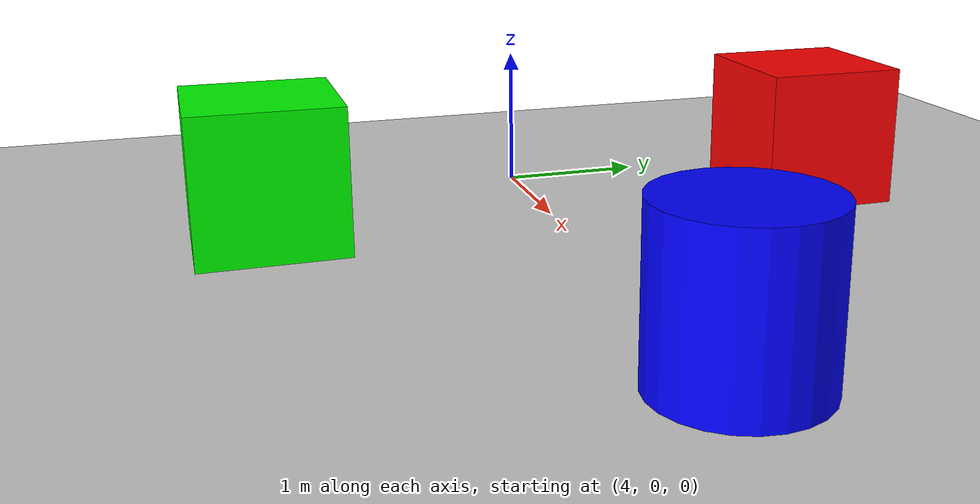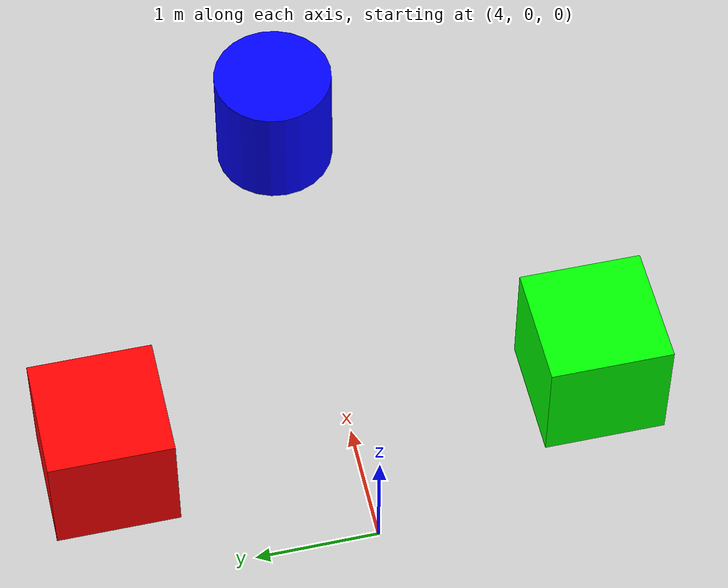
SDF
<?xml version="1.0"?>
<sdf version="1.6">
  <world name="default">

    <include>
      <uri>model://ground_plane</uri>
    </include>

    <include>
      <uri>model://sun</uri>
    </include>

    <!-- Some obstacles -->
    <model name="box1">
      <pose>5 2 0.5 0 0 0</pose>
      <static>true</static>
      <link name="link">
        <collision name="collision">
          <geometry>
            <box>
              <size>1 1 1</size>
            </box>
          </geometry>
        </collision>
        <visual name="visual">
          <geometry>
            <box>
              <size>1 1 1</size>
            </box>
          </geometry>
          <material>
            <ambient>1 0 0 1</ambient>
          </material>
        </visual>
      </link>
    </model>

    <model name="box2">
      <pose>5 -2 0.5 0 0 0</pose>
      <static>true</static>
      <link name="link">
        <collision name="collision">
          <geometry>
            <box>
              <size>1 1 1</size>
            </box>
          </geometry>
        </collision>
        <visual name="visual">
          <geometry>
            <box>
              <size>1 1 1</size>
            </box>
          </geometry>
          <material>
            <ambient>0 1 0 1</ambient>
          </material>
        </visual>
      </link>
    </model>

    <model name="cylinder1">
      <pose>8 0 0.5 0 0 0</pose>
      <static>true</static>
      <link name="link">
        <collision name="collision">
          <geometry>
            <cylinder>
              <radius>0.5</radius>
              <length>1</length>
            </cylinder>
          </geometry>
        </collision>
        <visual name="visual">
          <geometry>
            <cylinder>
              <radius>0.5</radius>
              <length>1</length>
            </cylinder>
          </geometry>
          <material>
            <ambient>0 0 1 1</ambient>
          </material>
        </visual>
      </link>
    </model>

  </world>
</sdf>
